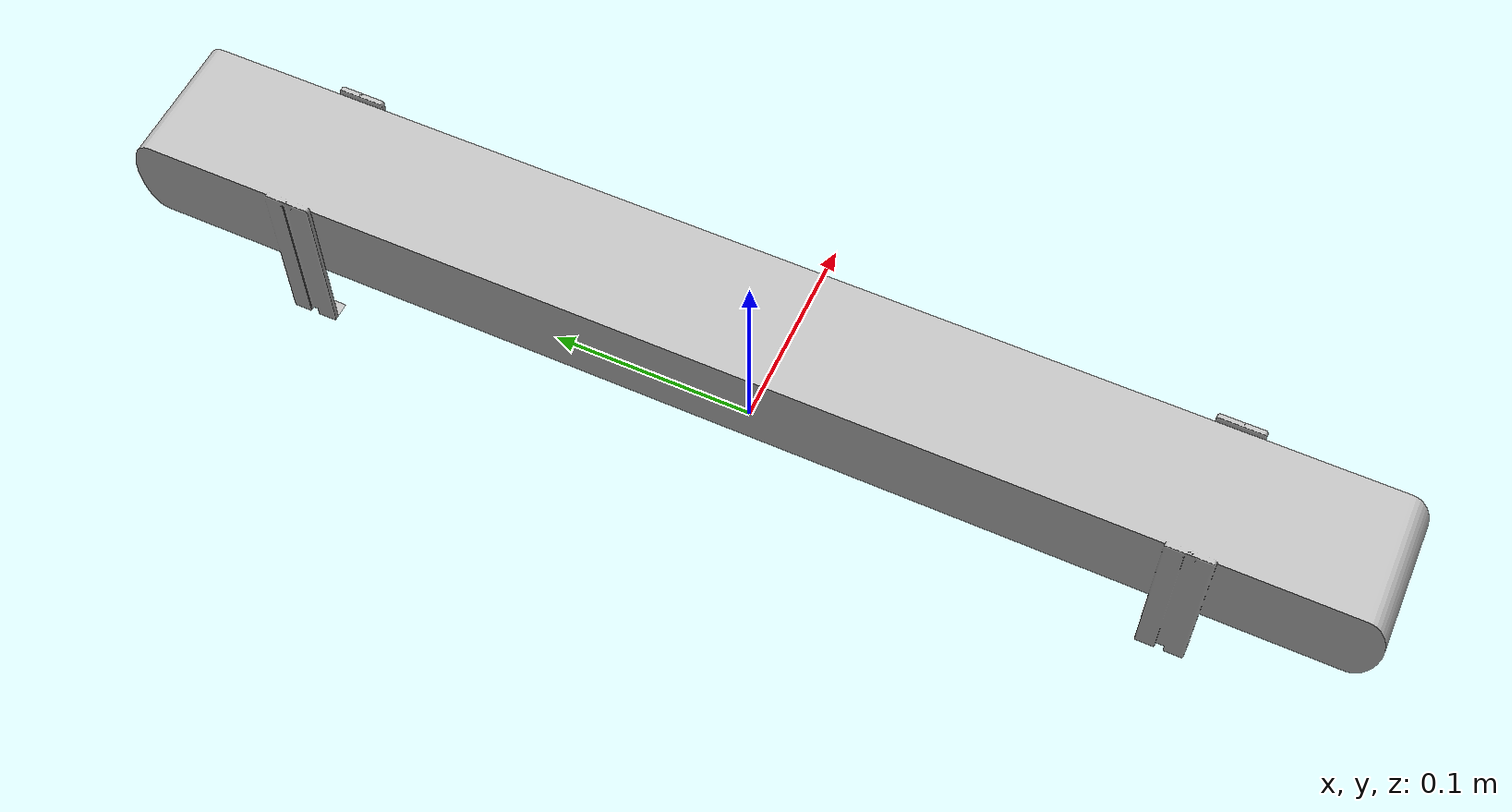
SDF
<?xml version="1.0"?>
<sdf version="1.9">
    <model name="conveyor_belt">

        <link name="belt_fixed">
            <inertial>
                <mass>10.0</mass>
                <inertia>
                <ixx>1</ixx>
                <iyy>1</iyy>
                <izz>1</izz>
                <ixy>0</ixy>
                <ixz>0</ixz>
                <iyz>0</iyz>
                </inertia>
            </inertial>

            <visual name="frame_visual">
                <pose>0 0 0 0 0 0</pose>
                <geometry>
                <mesh>
                    <uri>model://conveyor_belt/meshes/conveyor_belt.dae</uri>
                </mesh>
                </geometry>
            </visual>

            <collision name="frame_collision">
                <pose>0 0 0.0425 0 0 0</pose>
                <geometry>
                <box>
                    <size>0.07 0.595 0.085</size>
                </box>
                </geometry>
            </collision>
        </link>

        <link name="belt_moving">
            <allow_auto_disable>false</allow_auto_disable> <!-- 자동 슬립 방지(중요)-->
            <inertial>
                <mass>1.0</mass>
                <inertia>
                    <ixx>1.0</ixx>
                    <iyy>1.0</iyy>
                    <izz>1.0</izz>
                    <ixy>0</ixy>
                    <ixz>0</ixz>
                    <iyz>0</iyz>
                </inertia>
            </inertial>

            <!-- 실제 물리 collision (메쉬 실제 크기 기준) -->
            <collision name="belt_collision">
                <pose>0 0 0.085 0 0 0</pose>
                <geometry>
                    <box>
                        <size>0.058 0.5552 0.002</size>
                    </box>
                </geometry>
                <surface>
                    <friction>
                        <ode>
                            <mu>50</mu>
                            <mu2>50</mu2>
                        </ode>
                        <bullet>
                            <friction>100.0</friction>
                            <friction2>100.0</friction2>
                        </bullet>
                    </friction>
                </surface>
            </collision>

            <!-- collision 확인용 visual -->
        </link>

        <joint name="belt_joint" type="prismatic">
            <parent>belt_fixed</parent>
            <child>belt_moving</child>
            <axis>
                <xyz>0 1 0</xyz>
                <limit>
                    <lower>-0.005</lower>
                    <upper>0.01</upper> <!-- 이동 폭 좁게 -->
                    <effort>1000000</effort>
                    <velocity>2.0</velocity>
                </limit>
            </axis>
        </joint>

        <!-- 컨베이어 플러그인 -->
        <plugin filename="ignition-gazebo-pose-publisher-system"
        name="ignition::gazebo::systems::PosePublisher">
            <use_pose_vector_msg>true</use_pose_vector_msg>

            <!-- 모델 TF만 필요하면 true/false 상관없이 보통 모델은 나옴.
                그래도 명시 추천 -->
            <publish_model_pose>true</publish_model_pose>

            <!-- belt_fixed / belt_moving 같은 링크 프레임도 띄우고 싶으면 true -->
            <publish_link_pose>true</publish_link_pose>

            <publish_visual_pose>false</publish_visual_pose>
            <publish_collision_pose>false</publish_collision_pose>
            <publish_nested_model_pose>false</publish_nested_model_pose>

            <update_frequency>100</update_frequency>
        </plugin>

        <plugin name="jetank::ConveyorPlugin" filename="libconveyor_plugin.so">
            <joint_name>belt_joint</joint_name>
            <velocity>0.5</velocity> <!-- 컨베이어 속도 -->
        </plugin>

    </model>
</sdf>
